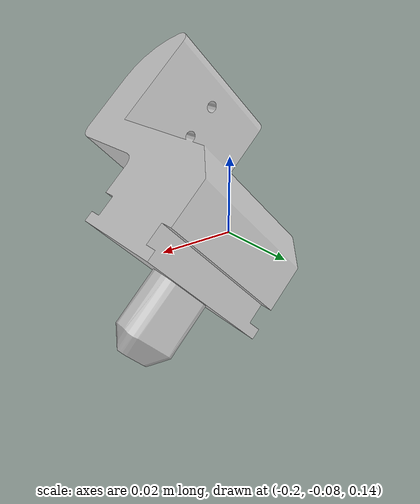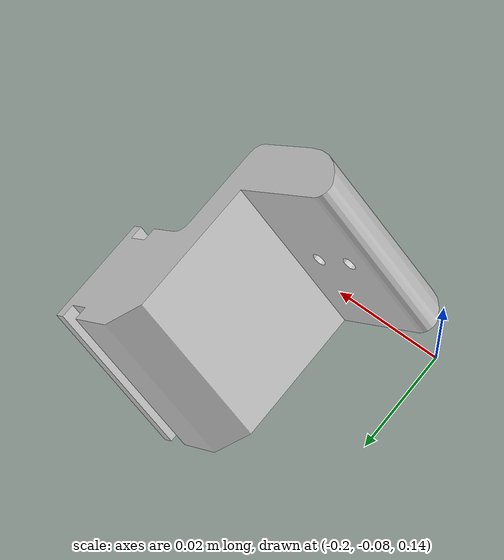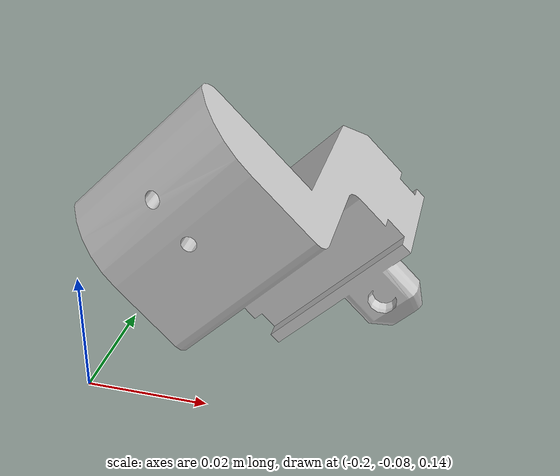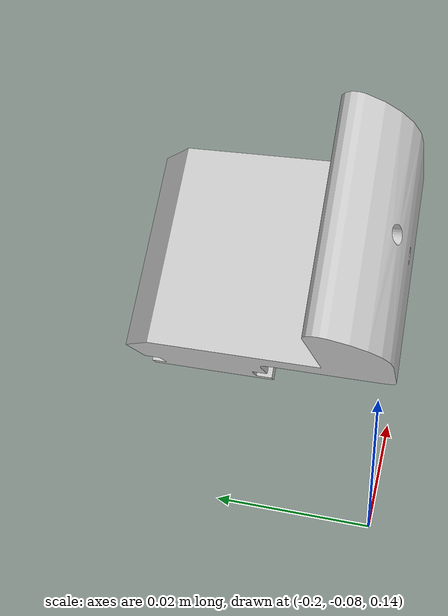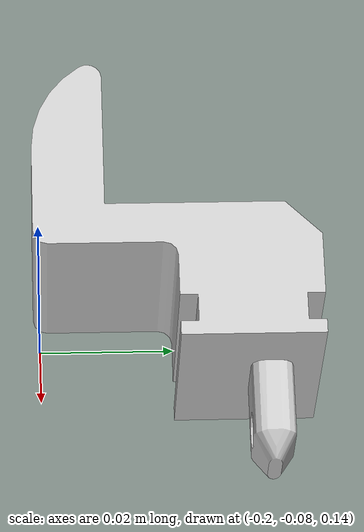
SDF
<?xml version="1.0" ?>
<sdf version="1.6">
  <model name="tooltip_03_2">
    <link name="link">
      <gravity>false</gravity>
      <visual name="visual">
        <geometry>
          <mesh>
            <uri>file:///root/workcell_ws_classic/src/descriptions/ur_description/meshes/toolchanger/Tooltip_03_2.STL</uri>
            <scale>1 1 1</scale>
          </mesh>
        </geometry>
        <material>
          <!-- Light grey metallic -->
          <ambient>0.7 0.7 0.7 1</ambient>
          <diffuse>0.8 0.8 0.8 1</diffuse>
          <specular>0.6 0.6 0.6 1</specular>
          <emissive>0 0 0 1</emissive>
        </material>
      </visual>

        <inertial>
          <mass>0.3</mass>
          <inertia>
            <ixx>0.0005</ixx>
            <ixy>0</ixy>
            <ixz>0</ixz>
            <iyy>0.0005</iyy>
            <iyz>0</iyz>
            <izz>0.0005</izz>
          </inertia>
        </inertial>
    </link>
  </model>
</sdf>
